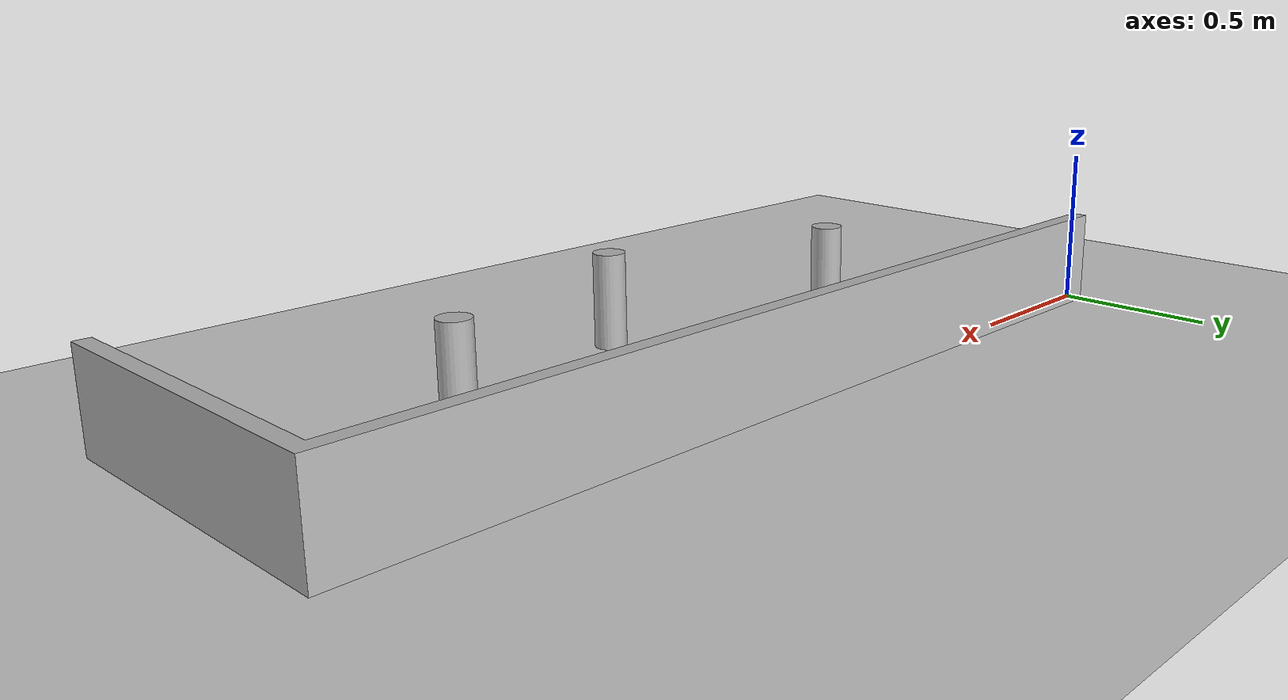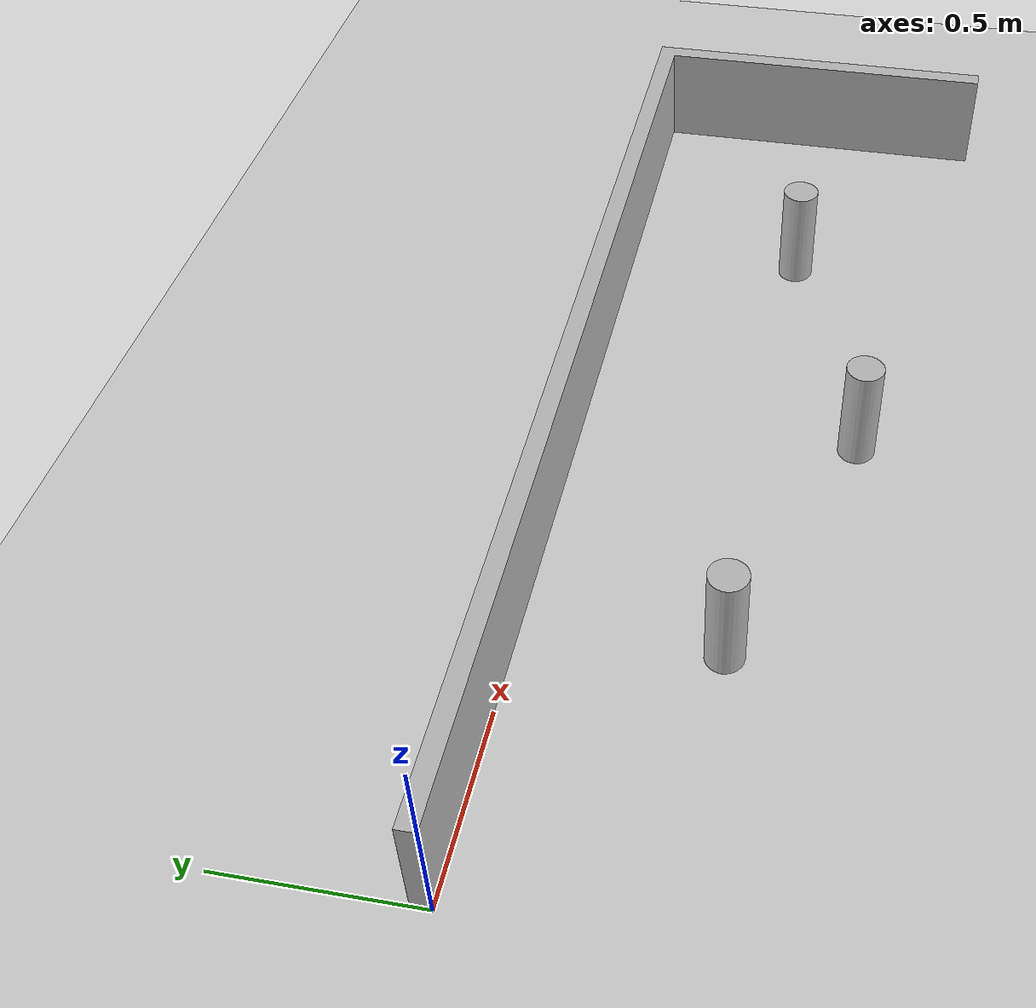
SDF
<?xml version="1.0"?>
<sdf version="1.8">
  <world name="default">
    <physics type="ode">
      <real_time_update_rate>1000.0</real_time_update_rate>
      <max_step_size>0.001</max_step_size>
      <real_time_factor>1</real_time_factor>
      <ode>
        <solver>
          <type>quick</type>
          <iters>150</iters>
          <precon_iters>0</precon_iters>
          <sor>1.400000</sor>
          <use_dynamic_moi_rescaling>1</use_dynamic_moi_rescaling>
        </solver>
        <constraints>
          <cfm>0.00001</cfm>
          <erp>0.2</erp>
          <contact_max_correcting_vel>2000.000000</contact_max_correcting_vel>
          <contact_surface_layer>0.01000</contact_surface_layer>
        </constraints>
      </ode>
    </physics>
    <plugin
      filename="gz-sim-physics-system"
      name="gz::sim::systems::Physics">
    </plugin>
    <plugin
      filename="gz-sim-user-commands-system"
      name="gz::sim::systems::UserCommands">
    </plugin>
    <plugin
      filename="gz-sim-scene-broadcaster-system"
      name="gz::sim::systems::SceneBroadcaster">
    </plugin>
    <plugin
      filename="gz-sim-sensors-system"
      name="gz::sim::systems::Sensors">
      <render_engine>ogre2</render_engine>
    </plugin>
    <plugin
      filename="gz-sim-imu-system"
      name="gz::sim::systems::Imu">
    </plugin>

    <include>
      <uri>https://fuel.gazebosim.org/1.0/OpenRobotics/models/Ground Plane</uri>
    </include>

    <include>
      <uri>https://fuel.gazebosim.org/1.0/OpenRobotics/models/Sun</uri>
    </include>

    <model name="turtlebot3_expirement1">
      <static>1</static>
      <include>
        <uri>model://turtlebot3_expirement1</uri>
      </include>
    </model>
  </world>
</sdf>

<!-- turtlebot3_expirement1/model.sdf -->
<sdf version="1.6">
  <model name="my_map">
    <static>true</static>
    <link name="map_link">

      <visual name="map_visual">
        <geometry>
          <mesh>
            <uri>model://turtlebot3_expirement1/meshes/expirement1map.stl</uri>
            <scale>0.001 0.001 0.001</scale>  <!-- Scaled down from solidworks -->
          </mesh>
        </geometry>
      </visual>

      <collision name="map_collision">
        <geometry>
          <mesh>
            <uri>model://turtlebot3_expirement1/meshes/expirement1map.stl</uri>
            <scale>0.001 0.001 0.001</scale>
          </mesh>
        </geometry>
      </collision>

    </link>
  </model>
</sdf>
